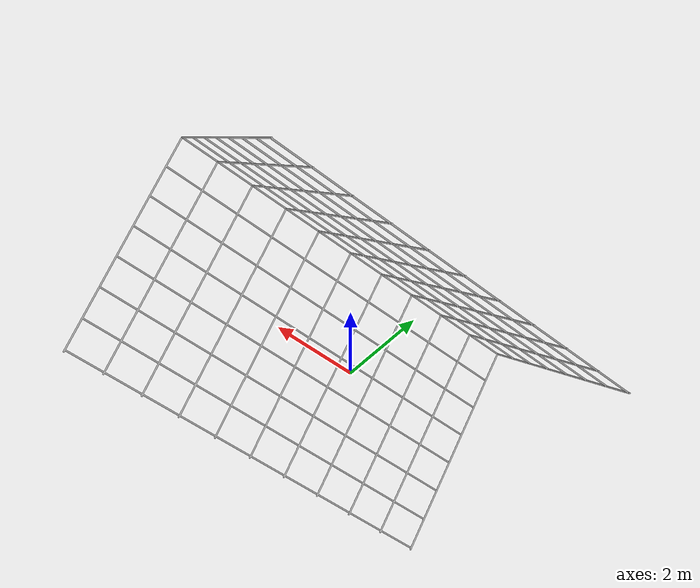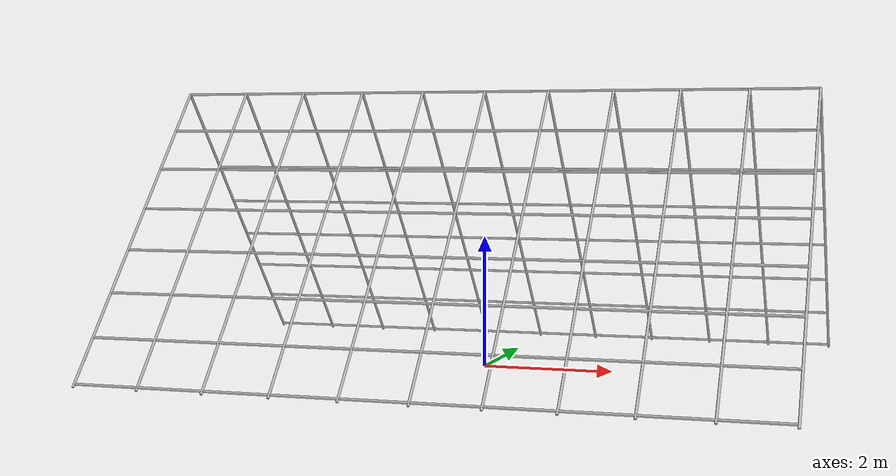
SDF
<?xml version="1.0"?>
<sdf version="1.6">
  <model name="trellis">
    <pose>0.0 0.0 0.0 0.0 0.0 0.0 </pose>
    <static>true</static>

    <link name="trellis">

      <collision name="collision">
        <geometry>
          <mesh>
            <uri>model://trellis/meshes/trellis.stl</uri>
          </mesh>
        </geometry>
      </collision>

      <visual name="visual">
        <geometry>
          <mesh>
            <uri>model://trellis/meshes/trellis.stl</uri>
          </mesh>
        </geometry>
      </visual>
    </link>
  </model>
</sdf>
